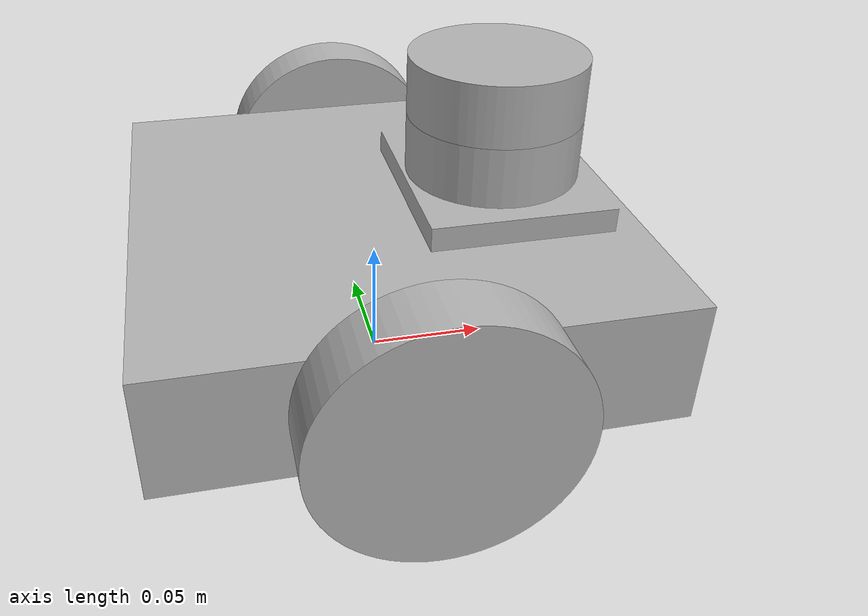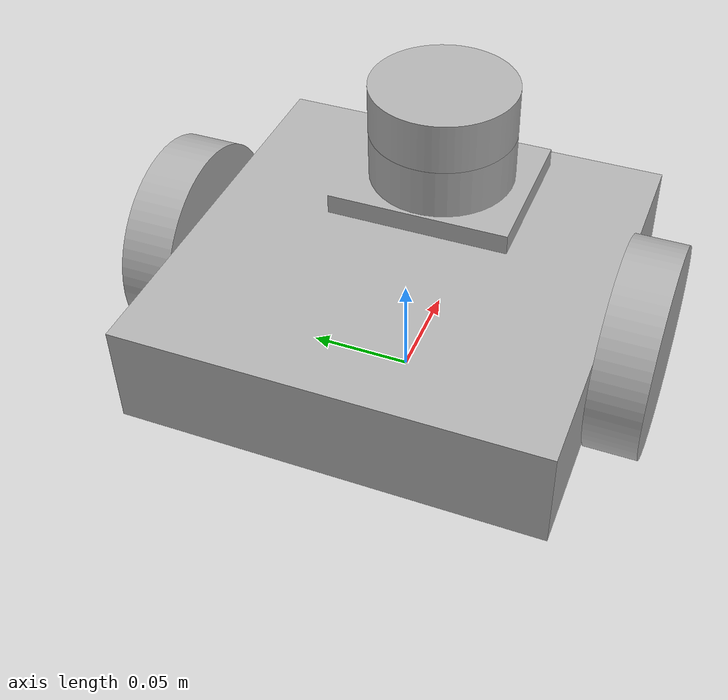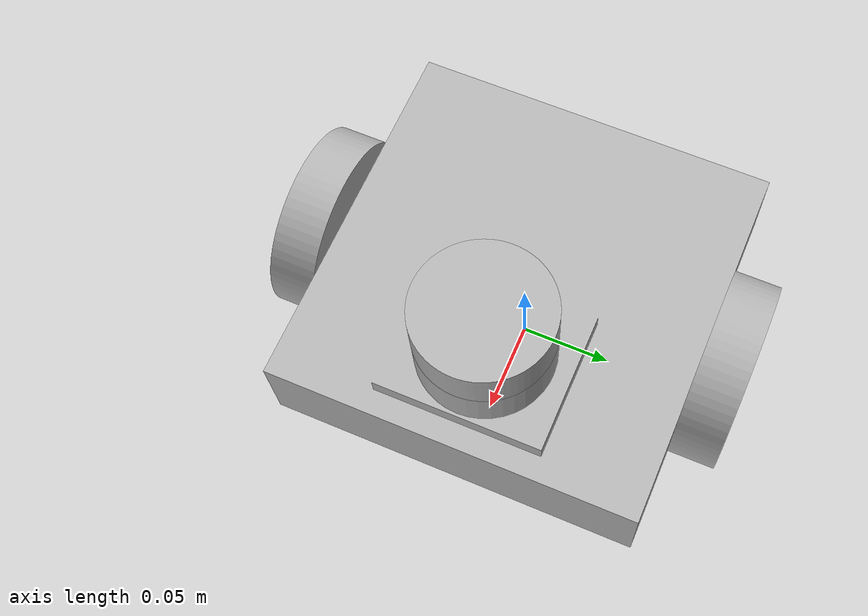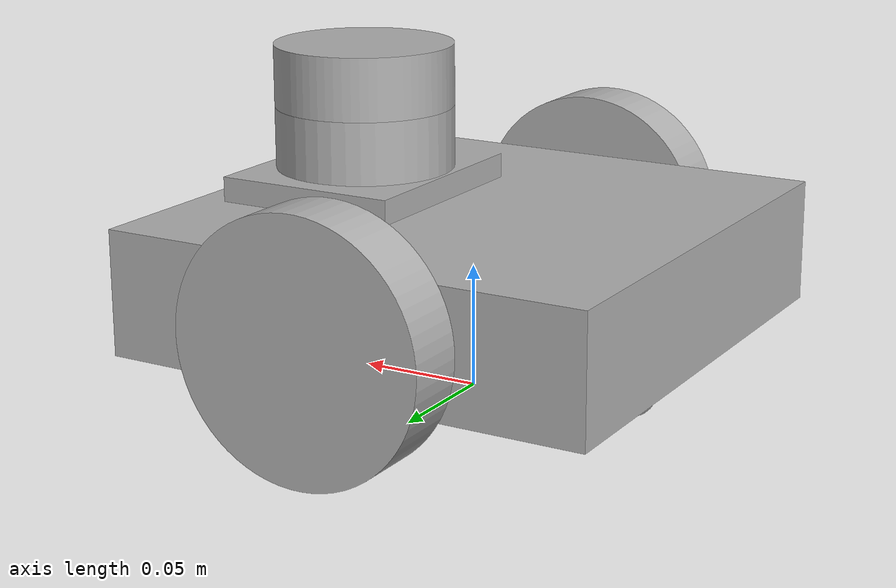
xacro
<?xml version="1.0" ?>
<robot name="botx" xmlns:xacro="http://www.ros.org/wiki/xacro">

<xacro:include filename="$(find botx_description)/urdf/materials.xacro" />
<xacro:include filename="$(find botx_description)/urdf/botx.trans" />
<xacro:include filename="$(find botx_description)/urdf/botx.gazebo" />
<link name="base_link">
  <inertial>
    <origin xyz="0.003877582830871742 1.6665797136639413e-17 0.05291829347376101" rpy="0 0 0"/>
    <mass value="2.3138752403503777"/>
    <inertia ixx="0.007906" iyy="0.008375" izz="0.01477" ixy="0.0" iyz="0.0" ixz="-0.000337"/>
  </inertial>
  <visual>
    <origin xyz="0 0 0" rpy="0 0 0"/>
    <geometry>
      <mesh filename="package://botx_description/meshes/base_link.stl" scale="0.001 0.001 0.001"/>
    </geometry>
    <material name="silver"/>
  </visual>
  <collision>
    <origin xyz="0 0 0" rpy="0 0 0"/>
    <geometry>
      <mesh filename="package://botx_description/meshes/base_link.stl" scale="0.001 0.001 0.001"/>
    </geometry>
  </collision>
</link>

<link name="right_wheel_1">
  <inertial>
    <origin xyz="5.790023100122032e-18 -0.012499999999999997 6.938893903907228e-18" rpy="0 0 0"/>
    <mass value="0.18260507298990664"/>
    <inertia ixx="0.000124" iyy="0.000228" izz="0.000124" ixy="0.0" iyz="-0.0" ixz="-0.0"/>
  </inertial>
  <visual>
    <origin xyz="-0.0 0.1 -0.05" rpy="0 0 0"/>
    <geometry>
      <mesh filename="package://botx_description/meshes/right_wheel_1.stl" scale="0.001 0.001 0.001"/>
    </geometry>
    <material name="silver"/>
  </visual>
  <collision>
    <origin xyz="-0.0 0.1 -0.05" rpy="0 0 0"/>
    <geometry>
      <mesh filename="package://botx_description/meshes/right_wheel_1.stl" scale="0.001 0.001 0.001"/>
    </geometry>
  </collision>
</link>

<link name="left_wheel_1">
  <inertial>
    <origin xyz="5.790023100122032e-18 0.012500000000000025 6.938893903907228e-18" rpy="0 0 0"/>
    <mass value="0.18260507298990664"/>
    <inertia ixx="0.000124" iyy="0.000228" izz="0.000124" ixy="0.0" iyz="0.0" ixz="-0.0"/>
  </inertial>
  <visual>
    <origin xyz="-0.0 -0.1 -0.05" rpy="0 0 0"/>
    <geometry>
      <mesh filename="package://botx_description/meshes/left_wheel_1.stl" scale="0.001 0.001 0.001"/>
    </geometry>
    <material name="silver"/>
  </visual>
  <collision>
    <origin xyz="-0.0 -0.1 -0.05" rpy="0 0 0"/>
    <geometry>
      <mesh filename="package://botx_description/meshes/left_wheel_1.stl" scale="0.001 0.001 0.001"/>
    </geometry>
  </collision>
</link>

<link name="lidar_1">
  <inertial>
    <origin xyz="0.0 5.584513020951029e-18 0.012499999999999997" rpy="0 0 0"/>
    <mass value="0.10789485809488787"/>
    <inertia ixx="4.1e-05" iyy="4.1e-05" izz="7e-05" ixy="0.0" iyz="0.0" ixz="0.0"/>
  </inertial>
  <visual>
    <origin xyz="-0.05 -0.0 -0.11" rpy="0 0 0"/>
    <geometry>
      <mesh filename="package://botx_description/meshes/lidar_1.stl" scale="0.001 0.001 0.001"/>
    </geometry>
    <material name="silver"/>
  </visual>
  <collision>
    <origin xyz="-0.05 -0.0 -0.11" rpy="0 0 0"/>
    <geometry>
      <mesh filename="package://botx_description/meshes/lidar_1.stl" scale="0.001 0.001 0.001"/>
    </geometry>
  </collision>
</link>

<joint name="Rev1" type="continuous">
  <origin xyz="0.0 -0.1 0.05" rpy="0 0 0"/>
  <parent link="base_link"/>
  <child link="right_wheel_1"/>
  <axis xyz="0.0 1.0 0.0"/>
</joint>

<joint name="Rev2" type="continuous">
  <origin xyz="0.0 0.1 0.05" rpy="0 0 0"/>
  <parent link="base_link"/>
  <child link="left_wheel_1"/>
  <axis xyz="0.0 1.0 0.0"/>
</joint>

<joint name="Rigid3" type="fixed">
  <origin xyz="0.05 0.0 0.11" rpy="0 0 0"/>
  <parent link="base_link"/>
  <child link="lidar_1"/>
</joint>

</robot>

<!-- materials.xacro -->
<robot name="botx" xmlns:xacro="http://www.ros.org/wiki/xacro" >

<material name="silver">
  <color rgba="0.700 0.700 0.700 1.000"/>
</material>

</robot>

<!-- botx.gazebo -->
<robot name="botx" xmlns:xacro="http://www.ros.org/wiki/xacro" >

<xacro:property name="body_color" value="Gazebo/Silver" />

<gazebo>
  <plugin name="control" filename="libgazebo_ros_control.so"/>
</gazebo>
<gazebo reference="base_link">
  <material>${body_color}</material>
  <mu1>0.1</mu1>
  <mu2>0.1</mu2>
  <selfCollide>true</selfCollide>
  <gravity>true</gravity>
</gazebo>

<gazebo reference="right_wheel_1">
  <material>${body_color}</material>
  <mu1>1500</mu1>
  <mu2>1500</mu2>
  <selfCollide>true</selfCollide>
</gazebo>

<gazebo reference="left_wheel_1">
  <material>${body_color}</material>
  <mu1>1500</mu1>
  <mu2>1500</mu2>
  <selfCollide>true</selfCollide>
</gazebo>

<gazebo reference="lidar_1">
  <material>${body_color}</material>
  <mu1>0.2</mu1>
  <mu2>0.2</mu2>
  <selfCollide>true</selfCollide>
</gazebo>

<gazebo>
  <plugin name="differential_drive_controller" filename="libgazebo_ros_diff_drive.so">

    <!-- Plugin update rate in Hz -->
    <updateRate>100</updateRate>

    <!-- Name of left joint, defaults to `left_joint` -->
    <leftJoint>Rev2</leftJoint>

    <!-- Name of right joint, defaults to `right_joint` -->
    <rightJoint>Rev1</rightJoint>

    <!-- The distance from the center of one wheel to the other, in meters, defaults to 0.34 m -->
    <wheelSeparation>0.2</wheelSeparation>

    <!-- Diameter of the wheels, in meters, defaults to 0.15 m -->
    <wheelDiameter>0.1</wheelDiameter>

    <!-- Wheel acceleration, in rad/s^2, defaults to 0.0 rad/s^2 -->
    <wheelAcceleration>1.0</wheelAcceleration>

    <!-- Maximum torque which the wheels can produce, in Nm, defaults to 5 Nm -->
    <wheelTorque>50</wheelTorque>

    <!-- Topic to receive geometry_msgs/Twist message commands, defaults to `cmd_vel` -->
    <commandTopic>cmd_vel</commandTopic>

    <!-- Topic to publish nav_msgs/Odometry messages, defaults to `odom` -->
    <odometryTopic>odom</odometryTopic>

    <!-- Odometry frame, defaults to `odom` -->
    <odometryFrame>odom</odometryFrame>

    <!-- Robot frame to calculate odometry from, defaults to `base_footprint` -->
    <robotBaseFrame>base_link</robotBaseFrame>

    <!-- Odometry source, 0 for ENCODER, 1 for WORLD, defaults to WORLD -->
    <odometrySource>1</odometrySource>

    <!-- Set to true to publish transforms for the wheel links, defaults to false -->
    <publishWheelTF>false</publishWheelTF>

    <!-- Set to true to publish transforms for the odometry, defaults to true -->
    <publishOdom>true</publishOdom>

    <!-- Set to true to publish sensor_msgs/JointState on /joint_states for the wheel joints, defaults to false -->
    <publishWheelJointState>false</publishWheelJointState>

    <!-- Set to true to swap right and left wheels, defaults to true -->
    <legacyMode>false</legacyMode>
  </plugin>
</gazebo>

 <!-- hokuyo -->
  <gazebo reference="lidar_1">
    <sensor type="ray" name="head_hokuyo_sensor">
      <pose>0 0 0 0 0 0</pose>
      <visualize>true</visualize>
      <update_rate>40</update_rate>
      <ray>
        <scan>
          <horizontal>
            <samples>720</samples>
            <resolution>1</resolution>
            <min_angle>-1.570796</min_angle>
            <max_angle>1.570796</max_angle>
          </horizontal>
        </scan>
        <range>
          <min>0.10</min>
          <max>30.0</max>
          <resolution>0.01</resolution>
        </range>
        <noise>
          <type>gaussian</type>
          <mean>0.0</mean>
          <stddev>0.01</stddev>
        </noise>
      </ray>
      <plugin name="gazebo_ros_head_hokuyo_controller" filename="libgazebo_ros_laser.so">
        <topicName>/scan</topicName>
        <frameName>lidar_1</frameName>
      </plugin>
    </sensor>
  </gazebo>

</robot>
